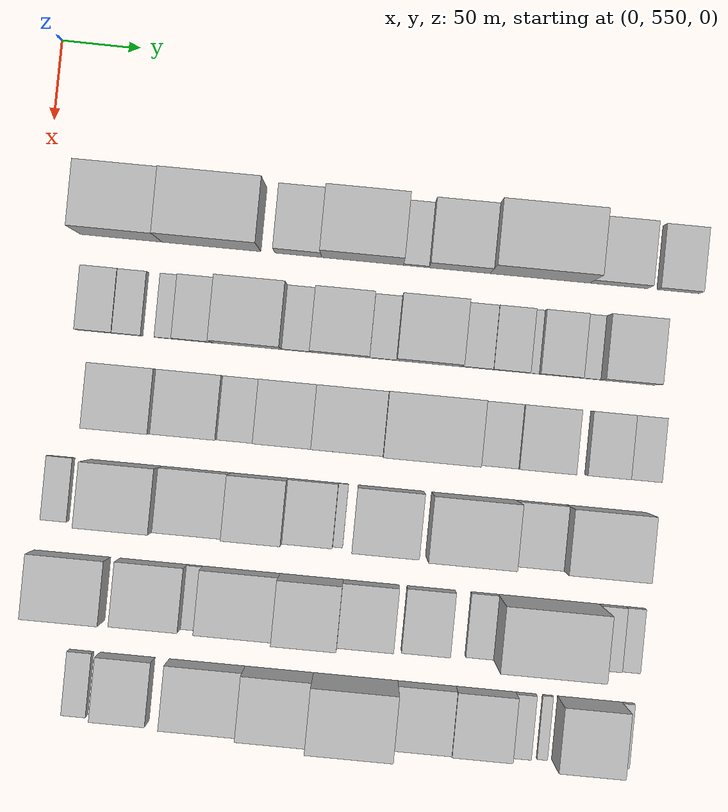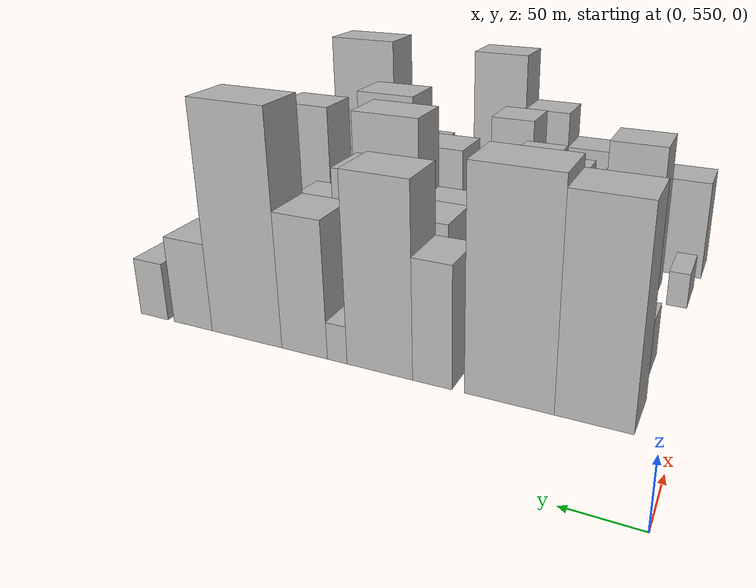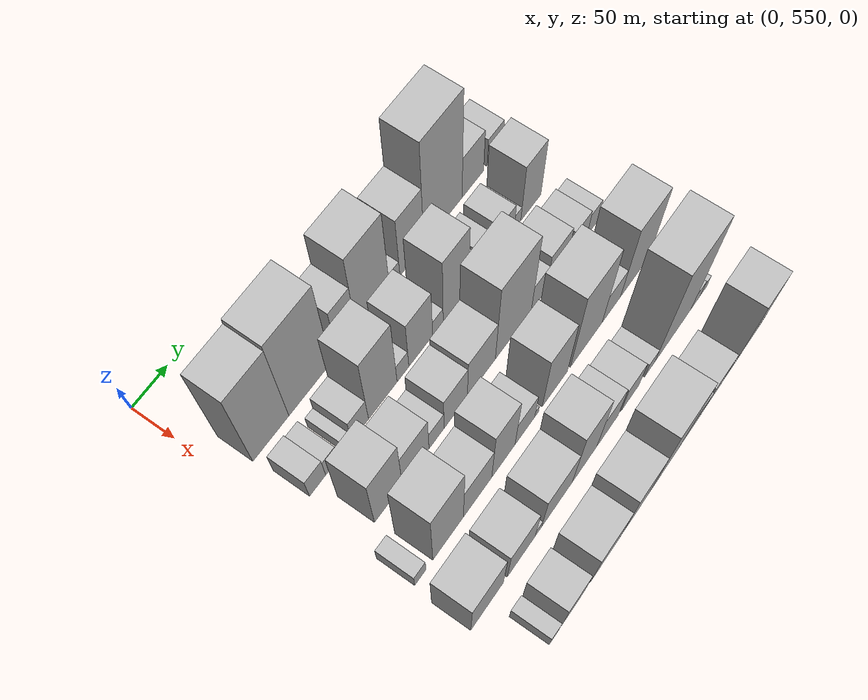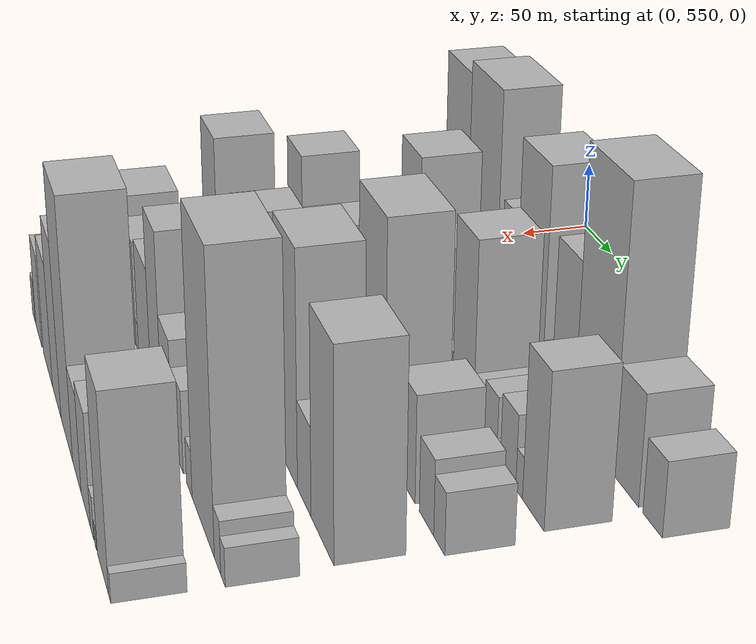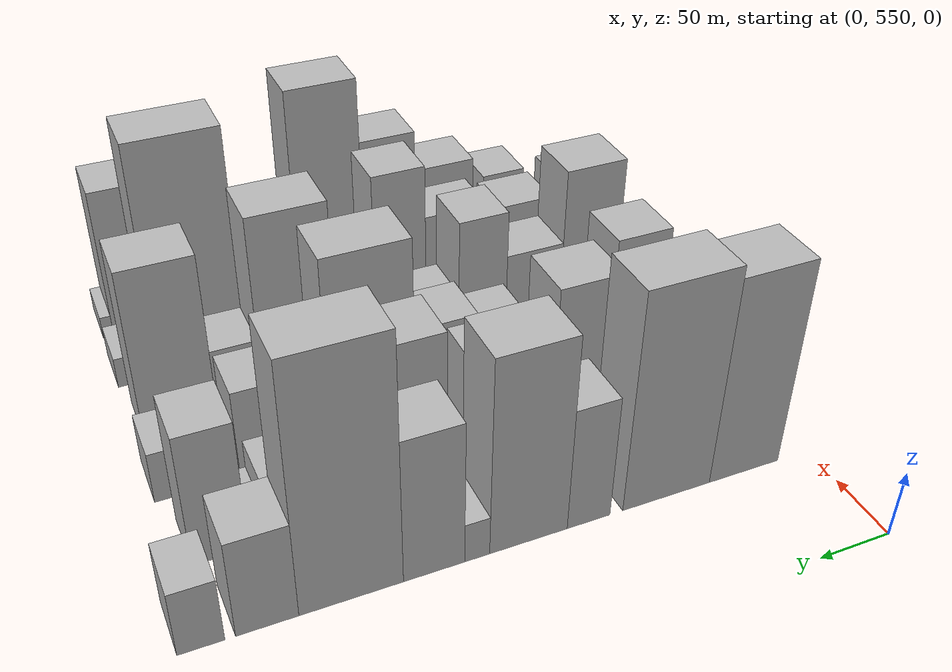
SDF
<sdf version="1.6">
 <world name="default">
  <model name="building_47">
   <static>1</static>
   <pose>100.0000 599.1721 0 0.000000 0.000000 0.000000</pose>
   <link name="link">
    <pose>0 0 78.00 0 0 0</pose>
    <collision name="collision"><geometry><box><size>40.0000 51.4819 156.0000</size></box></geometry></collision>
    <visual name="visual">
     <cast_shadows>0</cast_shadows>
     <geometry><box><size>40.0000 51.4819 156.0000</size></box></geometry>
     <material>
      <script>
       <uri>model://HANNAS_wall/materials/scripts</uri>
       <uri>model://HANNAS_wall/materials/textures</uri>
       <name>vrc/HANNAS_wall</name>
      </script>
     </material>
    </visual>
   </link>
  </model>
  <model name="building_48">
   <static>1</static>
   <pose>100.0000 656.0593 0 0.000000 0.000000 0.000000</pose>
   <link name="link">
    <pose>0 0 82.50 0 0 0</pose>
    <collision name="collision"><geometry><box><size>40.0000 62.2925 165.0000</size></box></geometry></collision>
    <visual name="visual">
     <cast_shadows>0</cast_shadows>
     <geometry><box><size>40.0000 62.2925 165.0000</size></box></geometry>
     <material>
      <script>
       <uri>model://HANNAS_wall/materials/scripts</uri>
       <uri>model://HANNAS_wall/materials/textures</uri>
       <name>vrc/HANNAS_wall</name>
      </script>
     </material>
    </visual>
   </link>
  </model>
  <model name="building_49">
   <static>1</static>
   <pose>100.0000 710.8783 0 0.000000 0.000000 0.000000</pose>
   <link name="link">
    <pose>0 0 46.50 0 0 0</pose>
    <collision name="collision"><geometry><box><size>40.0000 29.3456 93.0000</size></box></geometry></collision>
    <visual name="visual">
     <cast_shadows>0</cast_shadows>
     <geometry><box><size>40.0000 29.3456 93.0000</size></box></geometry>
     <material>
      <script>
       <uri>model://HANNAS_wall/materials/scripts</uri>
       <uri>model://HANNAS_wall/materials/textures</uri>
       <name>vrc/HANNAS_wall</name>
      </script>
     </material>
    </visual>
   </link>
  </model>
  <model name="building_50">
   <static>1</static>
   <pose>100.0000 751.2971 0 0.000000 0.000000 0.000000</pose>
   <link name="link">
    <pose>0 0 73.50 0 0 0</pose>
    <collision name="collision"><geometry><box><size>40.0000 51.4919 147.0000</size></box></geometry></collision>
    <visual name="visual">
     <cast_shadows>0</cast_shadows>
     <geometry><box><size>40.0000 51.4919 147.0000</size></box></geometry>
     <material>
      <script>
       <uri>model://HANNAS_wall/materials/scripts</uri>
       <uri>model://HANNAS_wall/materials/textures</uri>
       <name>vrc/HANNAS_wall</name>
      </script>
     </material>
    </visual>
   </link>
  </model>
  <model name="building_51">
   <static>1</static>
   <pose>100.0000 785.1018 0 0.000000 0.000000 0.000000</pose>
   <link name="link">
    <pose>0 0 15.00 0 0 0</pose>
    <collision name="collision"><geometry><box><size>40.0000 16.1175 30.0000</size></box></geometry></collision>
    <visual name="visual">
     <cast_shadows>0</cast_shadows>
     <geometry><box><size>40.0000 16.1175 30.0000</size></box></geometry>
     <material>
      <script>
       <uri>model://HANNAS_wall/materials/scripts</uri>
       <uri>model://HANNAS_wall/materials/textures</uri>
       <name>vrc/HANNAS_wall</name>
      </script>
     </material>
    </visual>
   </link>
  </model>
  <model name="building_52">
   <static>1</static>
   <pose>100.0000 812.4176 0 0.000000 0.000000 0.000000</pose>
   <link name="link">
    <pose>0 0 54.00 0 0 0</pose>
    <collision name="collision"><geometry><box><size>40.0000 38.5142 108.0000</size></box></geometry></collision>
    <visual name="visual">
     <cast_shadows>0</cast_shadows>
     <geometry><box><size>40.0000 38.5142 108.0000</size></box></geometry>
     <material>
      <script>
       <uri>model://HANNAS_wall/materials/scripts</uri>
       <uri>model://HANNAS_wall/materials/textures</uri>
       <name>vrc/HANNAS_wall</name>
      </script>
     </material>
    </visual>
   </link>
  </model>
  <model name="building_53">
   <static>1</static>
   <pose>100.0000 863.1393 0 0.000000 0.000000 0.000000</pose>
   <link name="link">
    <pose>0 0 91.50 0 0 0</pose>
    <collision name="collision"><geometry><box><size>40.0000 62.9293 183.0000</size></box></geometry></collision>
    <visual name="visual">
     <cast_shadows>0</cast_shadows>
     <geometry><box><size>40.0000 62.9293 183.0000</size></box></geometry>
     <material>
      <script>
       <uri>model://HANNAS_wall/materials/scripts</uri>
       <uri>model://HANNAS_wall/materials/textures</uri>
       <name>vrc/HANNAS_wall</name>
      </script>
     </material>
    </visual>
   </link>
  </model>
  <model name="building_54">
   <static>1</static>
   <pose>100.0000 912.8080 0 0.000000 0.000000 0.000000</pose>
   <link name="link">
    <pose>0 0 36.00 0 0 0</pose>
    <collision name="collision"><geometry><box><size>40.0000 36.4080 72.0000</size></box></geometry></collision>
    <visual name="visual">
     <cast_shadows>0</cast_shadows>
     <geometry><box><size>40.0000 36.4080 72.0000</size></box></geometry>
     <material>
      <script>
       <uri>model://HANNAS_wall/materials/scripts</uri>
       <uri>model://HANNAS_wall/materials/textures</uri>
       <name>vrc/HANNAS_wall</name>
      </script>
     </material>
    </visual>
   </link>
  </model>
  <model name="building_55">
   <static>1</static>
   <pose>100.0000 950.3897 0 0.000000 0.000000 0.000000</pose>
   <link name="link">
    <pose>0 0 24.00 0 0 0</pose>
    <collision name="collision"><geometry><box><size>40.0000 26.7554 48.0000</size></box></geometry></collision>
    <visual name="visual">
     <cast_shadows>0</cast_shadows>
     <geometry><box><size>40.0000 26.7554 48.0000</size></box></geometry>
     <material>
      <script>
       <uri>model://HANNAS_wall/materials/scripts</uri>
       <uri>model://HANNAS_wall/materials/textures</uri>
       <name>vrc/HANNAS_wall</name>
      </script>
     </material>
    </visual>
   </link>
  </model>
  <model name="building_98">
   <static>1</static>
   <pose>160.0000 588.7720 0 0.000000 0.000000 0.000000</pose>
   <link name="link">
    <pose>0 0 21.00 0 0 0</pose>
    <collision name="collision"><geometry><box><size>40.0000 23.1814 42.0000</size></box></geometry></collision>
    <visual name="visual">
     <cast_shadows>0</cast_shadows>
     <geometry><box><size>40.0000 23.1814 42.0000</size></box></geometry>
     <material>
      <script>
       <uri>model://HANNAS_wall/materials/scripts</uri>
       <uri>model://HANNAS_wall/materials/textures</uri>
       <name>vrc/HANNAS_wall</name>
      </script>
     </material>
    </visual>
   </link>
  </model>
  <model name="building_99">
   <static>1</static>
   <pose>160.0000 609.3860 0 0.000000 0.000000 0.000000</pose>
   <link name="link">
    <pose>0 0 18.00 0 0 0</pose>
    <collision name="collision"><geometry><box><size>40.0000 18.0466 36.0000</size></box></geometry></collision>
    <visual name="visual">
     <cast_shadows>0</cast_shadows>
     <geometry><box><size>40.0000 18.0466 36.0000</size></box></geometry>
     <material>
      <script>
       <uri>model://HANNAS_wall/materials/scripts</uri>
       <uri>model://HANNAS_wall/materials/textures</uri>
       <name>vrc/HANNAS_wall</name>
      </script>
     </material>
    </visual>
   </link>
  </model>
  <model name="building_100">
   <static>1</static>
   <pose>160.0000 632.1679 0 0.000000 0.000000 0.000000</pose>
   <link name="link">
    <pose>0 0 12.00 0 0 0</pose>
    <collision name="collision"><geometry><box><size>40.0000 11.5172 24.0000</size></box></geometry></collision>
    <visual name="visual">
     <cast_shadows>0</cast_shadows>
     <geometry><box><size>40.0000 11.5172 24.0000</size></box></geometry>
     <material>
      <script>
       <uri>model://HANNAS_wall/materials/scripts</uri>
       <uri>model://HANNAS_wall/materials/textures</uri>
       <name>vrc/HANNAS_wall</name>
      </script>
     </material>
    </visual>
   </link>
  </model>
  <model name="building_101">
   <static>1</static>
   <pose>160.0000 650.5871 0 0.000000 0.000000 0.000000</pose>
   <link name="link">
    <pose>0 0 24.00 0 0 0</pose>
    <collision name="collision"><geometry><box><size>40.0000 25.3212 48.0000</size></box></geometry></collision>
    <visual name="visual">
     <cast_shadows>0</cast_shadows>
     <geometry><box><size>40.0000 25.3212 48.0000</size></box></geometry>
     <material>
      <script>
       <uri>model://HANNAS_wall/materials/scripts</uri>
       <uri>model://HANNAS_wall/materials/textures</uri>
       <name>vrc/HANNAS_wall</name>
      </script>
     </material>
    </visual>
   </link>
  </model>
  <model name="building_102">
   <static>1</static>
   <pose>160.0000 684.8621 0 0.000000 0.000000 0.000000</pose>
   <link name="link">
    <pose>0 0 66.00 0 0 0</pose>
    <collision name="collision"><geometry><box><size>40.0000 43.2289 132.0000</size></box></geometry></collision>
    <visual name="visual">
     <cast_shadows>0</cast_shadows>
     <geometry><box><size>40.0000 43.2289 132.0000</size></box></geometry>
     <material>
      <script>
       <uri>model://HANNAS_wall/materials/scripts</uri>
       <uri>model://HANNAS_wall/materials/textures</uri>
       <name>vrc/HANNAS_wall</name>
      </script>
     </material>
    </visual>
   </link>
  </model>
  <model name="building_103">
   <static>1</static>
   <pose>160.0000 715.4889 0 0.000000 0.000000 0.000000</pose>
   <link name="link">
    <pose>0 0 18.00 0 0 0</pose>
    <collision name="collision"><geometry><box><size>40.0000 18.0246 36.0000</size></box></geometry></collision>
    <visual name="visual">
     <cast_shadows>0</cast_shadows>
     <geometry><box><size>40.0000 18.0246 36.0000</size></box></geometry>
     <material>
      <script>
       <uri>model://HANNAS_wall/materials/scripts</uri>
       <uri>model://HANNAS_wall/materials/textures</uri>
       <name>vrc/HANNAS_wall</name>
      </script>
     </material>
    </visual>
   </link>
  </model>
  <model name="building_104">
   <static>1</static>
   <pose>160.0000 743.0289 0 0.000000 0.000000 0.000000</pose>
   <link name="link">
    <pose>0 0 46.50 0 0 0</pose>
    <collision name="collision"><geometry><box><size>40.0000 37.0555 93.0000</size></box></geometry></collision>
    <visual name="visual">
     <cast_shadows>0</cast_shadows>
     <geometry><box><size>40.0000 37.0555 93.0000</size></box></geometry>
     <material>
      <script>
       <uri>model://HANNAS_wall/materials/scripts</uri>
       <uri>model://HANNAS_wall/materials/textures</uri>
       <name>vrc/HANNAS_wall</name>
      </script>
     </material>
    </visual>
   </link>
  </model>
  <model name="building_105">
   <static>1</static>
   <pose>160.0000 769.9390 0 0.000000 0.000000 0.000000</pose>
   <link name="link">
    <pose>0 0 15.00 0 0 0</pose>
    <collision name="collision"><geometry><box><size>40.0000 16.7647 30.0000</size></box></geometry></collision>
    <visual name="visual">
     <cast_shadows>0</cast_shadows>
     <geometry><box><size>40.0000 16.7647 30.0000</size></box></geometry>
     <material>
      <script>
       <uri>model://HANNAS_wall/materials/scripts</uri>
       <uri>model://HANNAS_wall/materials/textures</uri>
       <name>vrc/HANNAS_wall</name>
      </script>
     </material>
    </visual>
   </link>
  </model>
  <model name="building_106">
   <static>1</static>
   <pose>160.0000 798.6658 0 0.000000 0.000000 0.000000</pose>
   <link name="link">
    <pose>0 0 61.50 0 0 0</pose>
    <collision name="collision"><geometry><box><size>40.0000 40.6890 123.0000</size></box></geometry></collision>
    <visual name="visual">
     <cast_shadows>0</cast_shadows>
     <geometry><box><size>40.0000 40.6890 123.0000</size></box></geometry>
     <material>
      <script>
       <uri>model://HANNAS_wall/materials/scripts</uri>
       <uri>model://HANNAS_wall/materials/textures</uri>
       <name>vrc/HANNAS_wall</name>
      </script>
     </material>
    </visual>
   </link>
  </model>
  <model name="building_107">
   <static>1</static>
   <pose>160.0000 828.9600 0 0.000000 0.000000 0.000000</pose>
   <link name="link">
    <pose>0 0 18.00 0 0 0</pose>
    <collision name="collision"><geometry><box><size>40.0000 19.8992 36.0000</size></box></geometry></collision>
    <visual name="visual">
     <cast_shadows>0</cast_shadows>
     <geometry><box><size>40.0000 19.8992 36.0000</size></box></geometry>
     <material>
      <script>
       <uri>model://HANNAS_wall/materials/scripts</uri>
       <uri>model://HANNAS_wall/materials/textures</uri>
       <name>vrc/HANNAS_wall</name>
      </script>
     </material>
    </visual>
   </link>
  </model>
  <model name="building_108">
   <static>1</static>
   <pose>160.0000 850.4219 0 0.000000 0.000000 0.000000</pose>
   <link name="link">
    <pose>0 0 21.00 0 0 0</pose>
    <collision name="collision"><geometry><box><size>40.0000 23.0246 42.0000</size></box></geometry></collision>
    <visual name="visual">
     <cast_shadows>0</cast_shadows>
     <geometry><box><size>40.0000 23.0246 42.0000</size></box></geometry>
     <material>
      <script>
       <uri>model://HANNAS_wall/materials/scripts</uri>
       <uri>model://HANNAS_wall/materials/textures</uri>
       <name>vrc/HANNAS_wall</name>
      </script>
     </material>
    </visual>
   </link>
  </model>
  <model name="building_109">
   <static>1</static>
   <pose>160.0000 864.9803 0 0.000000 0.000000 0.000000</pose>
   <link name="link">
    <pose>0 0 7.50 0 0 0</pose>
    <collision name="collision"><geometry><box><size>40.0000 6.0921 15.0000</size></box></geometry></collision>
    <visual name="visual">
     <cast_shadows>0</cast_shadows>
     <geometry><box><size>40.0000 6.0921 15.0000</size></box></geometry>
     <material>
      <script>
       <uri>model://HANNAS_wall/materials/scripts</uri>
       <uri>model://HANNAS_wall/materials/textures</uri>
       <name>vrc/HANNAS_wall</name>
      </script>
     </material>
    </visual>
   </link>
  </model>
  <model name="building_110">
   <static>1</static>
   <pose>160.0000 881.4248 0 0.000000 0.000000 0.000000</pose>
   <link name="link">
    <pose>0 0 24.00 0 0 0</pose>
    <collision name="collision"><geometry><box><size>40.0000 26.7970 48.0000</size></box></geometry></collision>
    <visual name="visual">
     <cast_shadows>0</cast_shadows>
     <geometry><box><size>40.0000 26.7970 48.0000</size></box></geometry>
     <material>
      <script>
       <uri>model://HANNAS_wall/materials/scripts</uri>
       <uri>model://HANNAS_wall/materials/textures</uri>
       <name>vrc/HANNAS_wall</name>
      </script>
     </material>
    </visual>
   </link>
  </model>
  <model name="building_111">
   <static>1</static>
   <pose>160.0000 900.4712 0 0.000000 0.000000 0.000000</pose>
   <link name="link">
    <pose>0 0 13.50 0 0 0</pose>
    <collision name="collision"><geometry><box><size>40.0000 11.2957 27.0000</size></box></geometry></collision>
    <visual name="visual">
     <cast_shadows>0</cast_shadows>
     <geometry><box><size>40.0000 11.2957 27.0000</size></box></geometry>
     <material>
      <script>
       <uri>model://HANNAS_wall/materials/scripts</uri>
       <uri>model://HANNAS_wall/materials/textures</uri>
       <name>vrc/HANNAS_wall</name>
      </script>
     </material>
    </visual>
   </link>
  </model>
  <model name="building_112">
   <static>1</static>
   <pose>160.0000 923.4870 0 0.000000 0.000000 0.000000</pose>
   <link name="link">
    <pose>0 0 49.50 0 0 0</pose>
    <collision name="collision"><geometry><box><size>40.0000 34.7358 99.0000</size></box></geometry></collision>
    <visual name="visual">
     <cast_shadows>0</cast_shadows>
     <geometry><box><size>40.0000 34.7358 99.0000</size></box></geometry>
     <material>
      <script>
       <uri>model://HANNAS_wall/materials/scripts</uri>
       <uri>model://HANNAS_wall/materials/textures</uri>
       <name>vrc/HANNAS_wall</name>
      </script>
     </material>
    </visual>
   </link>
  </model>
  <model name="building_162">
   <static>1</static>
   <pose>220.0000 611.3706 0 0.000000 0.000000 0.000000</pose>
   <link name="link">
    <pose>0 0 55.50 0 0 0</pose>
    <collision name="collision"><geometry><box><size>40.0000 40.7969 111.0000</size></box></geometry></collision>
    <visual name="visual">
     <cast_shadows>0</cast_shadows>
     <geometry><box><size>40.0000 40.7969 111.0000</size></box></geometry>
     <material>
      <script>
       <uri>model://HANNAS_wall/materials/scripts</uri>
       <uri>model://HANNAS_wall/materials/textures</uri>
       <name>vrc/HANNAS_wall</name>
      </script>
     </material>
    </visual>
   </link>
  </model>
  <model name="building_163">
   <static>1</static>
   <pose>220.0000 651.8011 0 0.000000 0.000000 0.000000</pose>
   <link name="link">
    <pose>0 0 37.50 0 0 0</pose>
    <collision name="collision"><geometry><box><size>40.0000 40.0640 75.0000</size></box></geometry></collision>
    <visual name="visual">
     <cast_shadows>0</cast_shadows>
     <geometry><box><size>40.0000 40.0640 75.0000</size></box></geometry>
     <material>
      <script>
       <uri>model://HANNAS_wall/materials/scripts</uri>
       <uri>model://HANNAS_wall/materials/textures</uri>
       <name>vrc/HANNAS_wall</name>
      </script>
     </material>
    </visual>
   </link>
  </model>
  <model name="building_164">
   <static>1</static>
   <pose>220.0000 683.2706 0 0.000000 0.000000 0.000000</pose>
   <link name="link">
    <pose>0 0 19.50 0 0 0</pose>
    <collision name="collision"><geometry><box><size>40.0000 22.8750 39.0000</size></box></geometry></collision>
    <visual name="visual">
     <cast_shadows>0</cast_shadows>
     <geometry><box><size>40.0000 22.8750 39.0000</size></box></geometry>
     <material>
      <script>
       <uri>model://HANNAS_wall/materials/scripts</uri>
       <uri>model://HANNAS_wall/materials/textures</uri>
       <name>vrc/HANNAS_wall</name>
      </script>
     </material>
    </visual>
   </link>
  </model>
  <model name="building_165">
   <static>1</static>
   <pose>220.0000 712.8104 0 0.000000 0.000000 0.000000</pose>
   <link name="link">
    <pose>0 0 34.50 0 0 0</pose>
    <collision name="collision"><geometry><box><size>40.0000 36.2046 69.0000</size></box></geometry></collision>
    <visual name="visual">
     <cast_shadows>0</cast_shadows>
     <geometry><box><size>40.0000 36.2046 69.0000</size></box></geometry>
     <material>
      <script>
       <uri>model://HANNAS_wall/materials/scripts</uri>
       <uri>model://HANNAS_wall/materials/textures</uri>
       <name>vrc/HANNAS_wall</name>
      </script>
     </material>
    </visual>
   </link>
  </model>
  <model name="building_166">
   <static>1</static>
   <pose>220.0000 753.1588 0 0.000000 0.000000 0.000000</pose>
   <link name="link">
    <pose>0 0 40.50 0 0 0</pose>
    <collision name="collision"><geometry><box><size>40.0000 44.4922 81.0000</size></box></geometry></collision>
    <visual name="visual">
     <cast_shadows>0</cast_shadows>
     <geometry><box><size>40.0000 44.4922 81.0000</size></box></geometry>
     <material>
      <script>
       <uri>model://HANNAS_wall/materials/scripts</uri>
       <uri>model://HANNAS_wall/materials/textures</uri>
       <name>vrc/HANNAS_wall</name>
      </script>
     </material>
    </visual>
   </link>
  </model>
  <model name="building_167">
   <static>1</static>
   <pose>220.0000 804.8289 0 0.000000 0.000000 0.000000</pose>
   <link name="link">
    <pose>0 0 75.00 0 0 0</pose>
    <collision name="collision"><geometry><box><size>40.0000 58.8481 150.0000</size></box></geometry></collision>
    <visual name="visual">
     <cast_shadows>0</cast_shadows>
     <geometry><box><size>40.0000 58.8481 150.0000</size></box></geometry>
     <material>
      <script>
       <uri>model://HANNAS_wall/materials/scripts</uri>
       <uri>model://HANNAS_wall/materials/textures</uri>
       <name>vrc/HANNAS_wall</name>
      </script>
     </material>
    </visual>
   </link>
  </model>
  <model name="building_168">
   <static>1</static>
   <pose>220.0000 847.0097 0 0.000000 0.000000 0.000000</pose>
   <link name="link">
    <pose>0 0 25.50 0 0 0</pose>
    <collision name="collision"><geometry><box><size>40.0000 25.5136 51.0000</size></box></geometry></collision>
    <visual name="visual">
     <cast_shadows>0</cast_shadows>
     <geometry><box><size>40.0000 25.5136 51.0000</size></box></geometry>
     <material>
      <script>
       <uri>model://HANNAS_wall/materials/scripts</uri>
       <uri>model://HANNAS_wall/materials/textures</uri>
       <name>vrc/HANNAS_wall</name>
      </script>
     </material>
    </visual>
   </link>
  </model>
  <model name="building_169">
   <static>1</static>
   <pose>220.0000 877.3425 0 0.000000 0.000000 0.000000</pose>
   <link name="link">
    <pose>0 0 34.50 0 0 0</pose>
    <collision name="collision"><geometry><box><size>40.0000 35.1518 69.0000</size></box></geometry></collision>
    <visual name="visual">
     <cast_shadows>0</cast_shadows>
     <geometry><box><size>40.0000 35.1518 69.0000</size></box></geometry>
     <material>
      <script>
       <uri>model://HANNAS_wall/materials/scripts</uri>
       <uri>model://HANNAS_wall/materials/textures</uri>
       <name>vrc/HANNAS_wall</name>
      </script>
     </material>
    </visual>
   </link>
  </model>
  <model name="building_170">
   <static>1</static>
   <pose>220.0000 916.3771 0 0.000000 0.000000 0.000000</pose>
   <link name="link">
    <pose>0 0 24.00 0 0 0</pose>
    <collision name="collision"><geometry><box><size>40.0000 26.9175 48.0000</size></box></geometry></collision>
    <visual name="visual">
     <cast_shadows>0</cast_shadows>
     <geometry><box><size>40.0000 26.9175 48.0000</size></box></geometry>
     <material>
      <script>
       <uri>model://HANNAS_wall/materials/scripts</uri>
       <uri>model://HANNAS_wall/materials/textures</uri>
       <name>vrc/HANNAS_wall</name>
      </script>
     </material>
    </visual>
   </link>
  </model>
  <model name="building_171">
   <static>1</static>
   <pose>220.0000 939.7011 0 0.000000 0.000000 0.000000</pose>
   <link name="link">
    <pose>0 0 19.50 0 0 0</pose>
    <collision name="collision"><geometry><box><size>40.0000 19.7306 39.0000</size></box></geometry></collision>
    <visual name="visual">
     <cast_shadows>0</cast_shadows>
     <geometry><box><size>40.0000 19.7306 39.0000</size></box></geometry>
     <material>
      <script>
       <uri>model://HANNAS_wall/materials/scripts</uri>
       <uri>model://HANNAS_wall/materials/textures</uri>
       <name>vrc/HANNAS_wall</name>
      </script>
     </material>
    </visual>
   </link>
  </model>
  <model name="building_213">
   <static>1</static>
   <pose>280.0000 575.1079 0 0.000000 0.000000 0.000000</pose>
   <link name="link">
    <pose>0 0 15.00 0 0 0</pose>
    <collision name="collision"><geometry><box><size>40.0000 16.3994 30.0000</size></box></geometry></collision>
    <visual name="visual">
     <cast_shadows>0</cast_shadows>
     <geometry><box><size>40.0000 16.3994 30.0000</size></box></geometry>
     <material>
      <script>
       <uri>model://HANNAS_wall/materials/scripts</uri>
       <uri>model://HANNAS_wall/materials/textures</uri>
       <name>vrc/HANNAS_wall</name>
      </script>
     </material>
    </visual>
   </link>
  </model>
  <model name="building_214">
   <static>1</static>
   <pose>280.0000 616.0432 0 0.000000 0.000000 0.000000</pose>
   <link name="link">
    <pose>0 0 66.00 0 0 0</pose>
    <collision name="collision"><geometry><box><size>40.0000 45.4712 132.0000</size></box></geometry></collision>
    <visual name="visual">
     <cast_shadows>0</cast_shadows>
     <geometry><box><size>40.0000 45.4712 132.0000</size></box></geometry>
     <material>
      <script>
       <uri>model://HANNAS_wall/materials/scripts</uri>
       <uri>model://HANNAS_wall/materials/textures</uri>
       <name>vrc/HANNAS_wall</name>
      </script>
     </material>
    </visual>
   </link>
  </model>
  <model name="building_215">
   <static>1</static>
   <pose>280.0000 660.3918 0 0.000000 0.000000 0.000000</pose>
   <link name="link">
    <pose>0 0 37.50 0 0 0</pose>
    <collision name="collision"><geometry><box><size>40.0000 43.2259 75.0000</size></box></geometry></collision>
    <visual name="visual">
     <cast_shadows>0</cast_shadows>
     <geometry><box><size>40.0000 43.2259 75.0000</size></box></geometry>
     <material>
      <script>
       <uri>model://HANNAS_wall/materials/scripts</uri>
       <uri>model://HANNAS_wall/materials/textures</uri>
       <name>vrc/HANNAS_wall</name>
      </script>
     </material>
    </visual>
   </link>
  </model>
  <model name="building_216">
   <static>1</static>
   <pose>280.0000 700.1992 0 0.000000 0.000000 0.000000</pose>
   <link name="link">
    <pose>0 0 55.50 0 0 0</pose>
    <collision name="collision"><geometry><box><size>40.0000 36.3891 111.0000</size></box></geometry></collision>
    <visual name="visual">
     <cast_shadows>0</cast_shadows>
     <geometry><box><size>40.0000 36.3891 111.0000</size></box></geometry>
     <material>
      <script>
       <uri>model://HANNAS_wall/materials/scripts</uri>
       <uri>model://HANNAS_wall/materials/textures</uri>
       <name>vrc/HANNAS_wall</name>
      </script>
     </material>
    </visual>
   </link>
  </model>
  <model name="building_217">
   <static>1</static>
   <pose>280.0000 734.0759 0 0.000000 0.000000 0.000000</pose>
   <link name="link">
    <pose>0 0 27.00 0 0 0</pose>
    <collision name="collision"><geometry><box><size>40.0000 31.3641 54.0000</size></box></geometry></collision>
    <visual name="visual">
     <cast_shadows>0</cast_shadows>
     <geometry><box><size>40.0000 31.3641 54.0000</size></box></geometry>
     <material>
      <script>
       <uri>model://HANNAS_wall/materials/scripts</uri>
       <uri>model://HANNAS_wall/materials/textures</uri>
       <name>vrc/HANNAS_wall</name>
      </script>
     </material>
    </visual>
   </link>
  </model>
  <model name="building_218">
   <static>1</static>
   <pose>280.0000 752.8654 0 0.000000 0.000000 0.000000</pose>
   <link name="link">
    <pose>0 0 7.50 0 0 0</pose>
    <collision name="collision"><geometry><box><size>40.0000 6.2149 15.0000</size></box></geometry></collision>
    <visual name="visual">
     <cast_shadows>0</cast_shadows>
     <geometry><box><size>40.0000 6.2149 15.0000</size></box></geometry>
     <material>
      <script>
       <uri>model://HANNAS_wall/materials/scripts</uri>
       <uri>model://HANNAS_wall/materials/textures</uri>
       <name>vrc/HANNAS_wall</name>
      </script>
     </material>
    </visual>
   </link>
  </model>
  <model name="building_219">
   <static>1</static>
   <pose>280.0000 782.6055 0 0.000000 0.000000 0.000000</pose>
   <link name="link">
    <pose>0 0 54.00 0 0 0</pose>
    <collision name="collision"><geometry><box><size>40.0000 41.2653 108.0000</size></box></geometry></collision>
    <visual name="visual">
     <cast_shadows>0</cast_shadows>
     <geometry><box><size>40.0000 41.2653 108.0000</size></box></geometry>
     <material>
      <script>
       <uri>model://HANNAS_wall/materials/scripts</uri>
       <uri>model://HANNAS_wall/materials/textures</uri>
       <name>vrc/HANNAS_wall</name>
      </script>
     </material>
    </visual>
   </link>
  </model>
  <model name="building_220">
   <static>1</static>
   <pose>280.0000 834.9517 0 0.000000 0.000000 0.000000</pose>
   <link name="link">
    <pose>0 0 75.00 0 0 0</pose>
    <collision name="collision"><geometry><box><size>40.0000 53.4271 150.0000</size></box></geometry></collision>
    <visual name="visual">
     <cast_shadows>0</cast_shadows>
     <geometry><box><size>40.0000 53.4271 150.0000</size></box></geometry>
     <material>
      <script>
       <uri>model://HANNAS_wall/materials/scripts</uri>
       <uri>model://HANNAS_wall/materials/textures</uri>
       <name>vrc/HANNAS_wall</name>
      </script>
     </material>
    </visual>
   </link>
  </model>
  <model name="building_221">
   <static>1</static>
   <pose>280.0000 877.5240 0 0.000000 0.000000 0.000000</pose>
   <link name="link">
    <pose>0 0 28.50 0 0 0</pose>
    <collision name="collision"><geometry><box><size>40.0000 31.7174 57.0000</size></box></geometry></collision>
    <visual name="visual">
     <cast_shadows>0</cast_shadows>
     <geometry><box><size>40.0000 31.7174 57.0000</size></box></geometry>
     <material>
      <script>
       <uri>model://HANNAS_wall/materials/scripts</uri>
       <uri>model://HANNAS_wall/materials/textures</uri>
       <name>vrc/HANNAS_wall</name>
      </script>
     </material>
    </visual>
   </link>
  </model>
  <model name="building_222">
   <static>1</static>
   <pose>280.0000 918.4187 0 0.000000 0.000000 0.000000</pose>
   <link name="link">
    <pose>0 0 66.00 0 0 0</pose>
    <collision name="collision"><geometry><box><size>40.0000 50.0720 132.0000</size></box></geometry></collision>
    <visual name="visual">
     <cast_shadows>0</cast_shadows>
     <geometry><box><size>40.0000 50.0720 132.0000</size></box></geometry>
     <material>
      <script>
       <uri>model://HANNAS_wall/materials/scripts</uri>
       <uri>model://HANNAS_wall/materials/textures</uri>
       <name>vrc/HANNAS_wall</name>
      </script>
     </material>
    </visual>
   </link>
  </model>
  <model name="building_264">
   <static>1</static>
   <pose>340.0000 587.5298 0 0.000000 0.000000 0.000000</pose>
   <link name="link">
    <pose>0 0 43.50 0 0 0</pose>
    <collision name="collision"><geometry><box><size>40.0000 48.1712 87.0000</size></box></geometry></collision>
    <visual name="visual">
     <cast_shadows>0</cast_shadows>
     <geometry><box><size>40.0000 48.1712 87.0000</size></box></geometry>
     <material>
      <script>
       <uri>model://HANNAS_wall/materials/scripts</uri>
       <uri>model://HANNAS_wall/materials/textures</uri>
       <name>vrc/HANNAS_wall</name>
      </script>
     </material>
    </visual>
   </link>
  </model>
  <model name="building_265">
   <static>1</static>
   <pose>340.0000 638.8487 0 0.000000 0.000000 0.000000</pose>
   <link name="link">
    <pose>0 0 37.50 0 0 0</pose>
    <collision name="collision"><geometry><box><size>40.0000 42.4667 75.0000</size></box></geometry></collision>
    <visual name="visual">
     <cast_shadows>0</cast_shadows>
     <geometry><box><size>40.0000 42.4667 75.0000</size></box></geometry>
     <material>
      <script>
       <uri>model://HANNAS_wall/materials/scripts</uri>
       <uri>model://HANNAS_wall/materials/textures</uri>
       <name>vrc/HANNAS_wall</name>
      </script>
     </material>
    </visual>
   </link>
  </model>
  <model name="building_266">
   <static>1</static>
   <pose>340.0000 665.0602 0 0.000000 0.000000 0.000000</pose>
   <link name="link">
    <pose>0 0 10.50 0 0 0</pose>
    <collision name="collision"><geometry><box><size>40.0000 9.9562 21.0000</size></box></geometry></collision>
    <visual name="visual">
     <cast_shadows>0</cast_shadows>
     <geometry><box><size>40.0000 9.9562 21.0000</size></box></geometry>
     <material>
      <script>
       <uri>model://HANNAS_wall/materials/scripts</uri>
       <uri>model://HANNAS_wall/materials/textures</uri>
       <name>vrc/HANNAS_wall</name>
      </script>
     </material>
    </visual>
   </link>
  </model>
  <model name="building_267">
   <static>1</static>
   <pose>340.0000 694.2841 0 0.000000 0.000000 0.000000</pose>
   <link name="link">
    <pose>0 0 40.50 0 0 0</pose>
    <collision name="collision"><geometry><box><size>40.0000 48.4916 81.0000</size></box></geometry></collision>
    <visual name="visual">
     <cast_shadows>0</cast_shadows>
     <geometry><box><size>40.0000 48.4916 81.0000</size></box></geometry>
     <material>
      <script>
       <uri>model://HANNAS_wall/materials/scripts</uri>
       <uri>model://HANNAS_wall/materials/textures</uri>
       <name>vrc/HANNAS_wall</name>
      </script>
     </material>
    </visual>
   </link>
  </model>
  <model name="building_268">
   <static>1</static>
   <pose>340.0000 738.4312 0 0.000000 0.000000 0.000000</pose>
   <link name="link">
    <pose>0 0 61.50 0 0 0</pose>
    <collision name="collision"><geometry><box><size>40.0000 39.8026 123.0000</size></box></geometry></collision>
    <visual name="visual">
     <cast_shadows>0</cast_shadows>
     <geometry><box><size>40.0000 39.8026 123.0000</size></box></geometry>
     <material>
      <script>
       <uri>model://HANNAS_wall/materials/scripts</uri>
       <uri>model://HANNAS_wall/materials/textures</uri>
       <name>vrc/HANNAS_wall</name>
      </script>
     </material>
    </visual>
   </link>
  </model>
  <model name="building_269">
   <static>1</static>
   <pose>340.0000 775.9152 0 0.000000 0.000000 0.000000</pose>
   <link name="link">
    <pose>0 0 34.50 0 0 0</pose>
    <collision name="collision"><geometry><box><size>40.0000 35.1655 69.0000</size></box></geometry></collision>
    <visual name="visual">
     <cast_shadows>0</cast_shadows>
     <geometry><box><size>40.0000 35.1655 69.0000</size></box></geometry>
     <material>
      <script>
       <uri>model://HANNAS_wall/materials/scripts</uri>
       <uri>model://HANNAS_wall/materials/textures</uri>
       <name>vrc/HANNAS_wall</name>
      </script>
     </material>
    </visual>
   </link>
  </model>
  <model name="building_270">
   <static>1</static>
   <pose>340.0000 813.6695 0 0.000000 0.000000 0.000000</pose>
   <link name="link">
    <pose>0 0 27.00 0 0 0</pose>
    <collision name="collision"><geometry><box><size>40.0000 30.3432 54.0000</size></box></geometry></collision>
    <visual name="visual">
     <cast_shadows>0</cast_shadows>
     <geometry><box><size>40.0000 30.3432 54.0000</size></box></geometry>
     <material>
      <script>
       <uri>model://HANNAS_wall/materials/scripts</uri>
       <uri>model://HANNAS_wall/materials/textures</uri>
       <name>vrc/HANNAS_wall</name>
      </script>
     </material>
    </visual>
   </link>
  </model>
  <model name="building_271">
   <static>1</static>
   <pose>340.0000 847.5080 0 0.000000 0.000000 0.000000</pose>
   <link name="link">
    <pose>0 0 15.00 0 0 0</pose>
    <collision name="collision"><geometry><box><size>40.0000 17.3338 30.0000</size></box></geometry></collision>
    <visual name="visual">
     <cast_shadows>0</cast_shadows>
     <geometry><box><size>40.0000 17.3338 30.0000</size></box></geometry>
     <material>
      <script>
       <uri>model://HANNAS_wall/materials/scripts</uri>
       <uri>model://HANNAS_wall/materials/textures</uri>
       <name>vrc/HANNAS_wall</name>
      </script>
     </material>
    </visual>
   </link>
  </model>
  <model name="building_272">
   <static>1</static>
   <pose>340.0000 887.9747 0 0.000000 0.000000 0.000000</pose>
   <link name="link">
    <pose>0 0 91.50 0 0 0</pose>
    <collision name="collision"><geometry><box><size>40.0000 63.5994 183.0000</size></box></geometry></collision>
    <visual name="visual">
     <cast_shadows>0</cast_shadows>
     <geometry><box><size>40.0000 63.5994 183.0000</size></box></geometry>
     <material>
      <script>
       <uri>model://HANNAS_wall/materials/scripts</uri>
       <uri>model://HANNAS_wall/materials/textures</uri>
       <name>vrc/HANNAS_wall</name>
      </script>
     </material>
    </visual>
   </link>
  </model>
  <model name="building_273">
   <static>1</static>
   <pose>340.0000 928.1653 0 0.000000 0.000000 0.000000</pose>
   <link name="link">
    <pose>0 0 16.50 0 0 0</pose>
    <collision name="collision"><geometry><box><size>40.0000 16.7818 33.0000</size></box></geometry></collision>
    <visual name="visual">
     <cast_shadows>0</cast_shadows>
     <geometry><box><size>40.0000 16.7818 33.0000</size></box></geometry>
     <material>
      <script>
       <uri>model://HANNAS_wall/materials/scripts</uri>
       <uri>model://HANNAS_wall/materials/textures</uri>
       <name>vrc/HANNAS_wall</name>
      </script>
     </material>
    </visual>
   </link>
  </model>
  <model name="building_274">
   <static>1</static>
   <pose>340.0000 942.4763 0 0.000000 0.000000 0.000000</pose>
   <link name="link">
    <pose>0 0 12.00 0 0 0</pose>
    <collision name="collision"><geometry><box><size>40.0000 11.8402 24.0000</size></box></geometry></collision>
    <visual name="visual">
     <cast_shadows>0</cast_shadows>
     <geometry><box><size>40.0000 11.8402 24.0000</size></box></geometry>
     <material>
      <script>
       <uri>model://HANNAS_wall/materials/scripts</uri>
       <uri>model://HANNAS_wall/materials/textures</uri>
       <name>vrc/HANNAS_wall</name>
      </script>
     </material>
    </visual>
   </link>
  </model>
  <model name="building_320">
   <static>1</static>
   <pose>400.0000 599.0292 0 0.000000 0.000000 0.000000</pose>
   <link name="link">
    <pose>0 0 15.00 0 0 0</pose>
    <collision name="collision"><geometry><box><size>40.0000 15.3970 30.0000</size></box></geometry></collision>
    <visual name="visual">
     <cast_shadows>0</cast_shadows>
     <geometry><box><size>40.0000 15.3970 30.0000</size></box></geometry>
     <material>
      <script>
       <uri>model://HANNAS_wall/materials/scripts</uri>
       <uri>model://HANNAS_wall/materials/textures</uri>
       <name>vrc/HANNAS_wall</name>
      </script>
     </material>
    </visual>
   </link>
  </model>
  <model name="building_321">
   <static>1</static>
   <pose>400.0000 628.0355 0 0.000000 0.000000 0.000000</pose>
   <link name="link">
    <pose>0 0 33.00 0 0 0</pose>
    <collision name="collision"><geometry><box><size>40.0000 34.6155 66.0000</size></box></geometry></collision>
    <visual name="visual">
     <cast_shadows>0</cast_shadows>
     <geometry><box><size>40.0000 34.6155 66.0000</size></box></geometry>
     <material>
      <script>
       <uri>model://HANNAS_wall/materials/scripts</uri>
       <uri>model://HANNAS_wall/materials/textures</uri>
       <name>vrc/HANNAS_wall</name>
      </script>
     </material>
    </visual>
   </link>
  </model>
  <model name="building_322">
   <static>1</static>
   <pose>400.0000 678.2726 0 0.000000 0.000000 0.000000</pose>
   <link name="link">
    <pose>0 0 42.00 0 0 0</pose>
    <collision name="collision"><geometry><box><size>40.0000 47.8587 84.0000</size></box></geometry></collision>
    <visual name="visual">
     <cast_shadows>0</cast_shadows>
     <geometry><box><size>40.0000 47.8587 84.0000</size></box></geometry>
     <material>
      <script>
       <uri>model://HANNAS_wall/materials/scripts</uri>
       <uri>model://HANNAS_wall/materials/textures</uri>
       <name>vrc/HANNAS_wall</name>
      </script>
     </material>
    </visual>
   </link>
  </model>
  <model name="building_323">
   <static>1</static>
   <pose>400.0000 723.7408 0 0.000000 0.000000 0.000000</pose>
   <link name="link">
    <pose>0 0 58.50 0 0 0</pose>
    <collision name="collision"><geometry><box><size>40.0000 43.0777 117.0000</size></box></geometry></collision>
    <visual name="visual">
     <cast_shadows>0</cast_shadows>
     <geometry><box><size>40.0000 43.0777 117.0000</size></box></geometry>
     <material>
      <script>
       <uri>model://HANNAS_wall/materials/scripts</uri>
       <uri>model://HANNAS_wall/materials/textures</uri>
       <name>vrc/HANNAS_wall</name>
      </script>
     </material>
    </visual>
   </link>
  </model>
  <model name="building_324">
   <static>1</static>
   <pose>400.0000 771.8888 0 0.000000 0.000000 0.000000</pose>
   <link name="link">
    <pose>0 0 84.00 0 0 0</pose>
    <collision name="collision"><geometry><box><size>40.0000 53.2182 168.0000</size></box></geometry></collision>
    <visual name="visual">
     <cast_shadows>0</cast_shadows>
     <geometry><box><size>40.0000 53.2182 168.0000</size></box></geometry>
     <material>
      <script>
       <uri>model://HANNAS_wall/materials/scripts</uri>
       <uri>model://HANNAS_wall/materials/textures</uri>
       <name>vrc/HANNAS_wall</name>
      </script>
     </material>
    </visual>
   </link>
  </model>
  <model name="building_325">
   <static>1</static>
   <pose>400.0000 816.8933 0 0.000000 0.000000 0.000000</pose>
   <link name="link">
    <pose>0 0 31.50 0 0 0</pose>
    <collision name="collision"><geometry><box><size>40.0000 36.7908 63.0000</size></box></geometry></collision>
    <visual name="visual">
     <cast_shadows>0</cast_shadows>
     <geometry><box><size>40.0000 36.7908 63.0000</size></box></geometry>
     <material>
      <script>
       <uri>model://HANNAS_wall/materials/scripts</uri>
       <uri>model://HANNAS_wall/materials/textures</uri>
       <name>vrc/HANNAS_wall</name>
      </script>
     </material>
    </visual>
   </link>
  </model>
  <model name="building_326">
   <static>1</static>
   <pose>400.0000 854.0701 0 0.000000 0.000000 0.000000</pose>
   <link name="link">
    <pose>0 0 36.00 0 0 0</pose>
    <collision name="collision"><geometry><box><size>40.0000 37.5627 72.0000</size></box></geometry></collision>
    <visual name="visual">
     <cast_shadows>0</cast_shadows>
     <geometry><box><size>40.0000 37.5627 72.0000</size></box></geometry>
     <material>
      <script>
       <uri>model://HANNAS_wall/materials/scripts</uri>
       <uri>model://HANNAS_wall/materials/textures</uri>
       <name>vrc/HANNAS_wall</name>
      </script>
     </material>
    </visual>
   </link>
  </model>
  <model name="building_327">
   <static>1</static>
   <pose>400.0000 879.2396 0 0.000000 0.000000 0.000000</pose>
   <link name="link">
    <pose>0 0 13.50 0 0 0</pose>
    <collision name="collision"><geometry><box><size>40.0000 12.7764 27.0000</size></box></geometry></collision>
    <visual name="visual">
     <cast_shadows>0</cast_shadows>
     <geometry><box><size>40.0000 12.7764 27.0000</size></box></geometry>
     <material>
      <script>
       <uri>model://HANNAS_wall/materials/scripts</uri>
       <uri>model://HANNAS_wall/materials/textures</uri>
       <name>vrc/HANNAS_wall</name>
      </script>
     </material>
    </visual>
   </link>
  </model>
  <model name="building_328">
   <static>1</static>
   <pose>400.0000 892.9193 0 0.000000 0.000000 0.000000</pose>
   <link name="link">
    <pose>0 0 7.50 0 0 0</pose>
    <collision name="collision"><geometry><box><size>40.0000 6.5829 15.0000</size></box></geometry></collision>
    <visual name="visual">
     <cast_shadows>0</cast_shadows>
     <geometry><box><size>40.0000 6.5829 15.0000</size></box></geometry>
     <material>
      <script>
       <uri>model://HANNAS_wall/materials/scripts</uri>
       <uri>model://HANNAS_wall/materials/textures</uri>
       <name>vrc/HANNAS_wall</name>
      </script>
     </material>
    </visual>
   </link>
  </model>
  <model name="building_329">
   <static>1</static>
   <pose>400.0000 919.5887 0 0.000000 0.000000 0.000000</pose>
   <link name="link">
    <pose>0 0 60.00 0 0 0</pose>
    <collision name="collision"><geometry><box><size>40.0000 40.7559 120.0000</size></box></geometry></collision>
    <visual name="visual">
     <cast_shadows>0</cast_shadows>
     <geometry><box><size>40.0000 40.7559 120.0000</size></box></geometry>
     <material>
      <script>
       <uri>model://HANNAS_wall/materials/scripts</uri>
       <uri>model://HANNAS_wall/materials/textures</uri>
       <name>vrc/HANNAS_wall</name>
      </script>
     </material>
    </visual>
   </link>
  </model>
  <model name="building_330">
   <static>1</static>
   <pose>400.0000 943.7345 0 0.000000 0.000000 0.000000</pose>
   <link name="link">
    <pose>0 0 9.00 0 0 0</pose>
    <collision name="collision"><geometry><box><size>40.0000 7.5358 18.0000</size></box></geometry></collision>
    <visual name="visual">
     <cast_shadows>0</cast_shadows>
     <geometry><box><size>40.0000 7.5358 18.0000</size></box></geometry>
     <material>
      <script>
       <uri>model://HANNAS_wall/materials/scripts</uri>
       <uri>model://HANNAS_wall/materials/textures</uri>
       <name>vrc/HANNAS_wall</name>
      </script>
     </material>
    </visual>
   </link>
  </model>
 </world>
</sdf>
